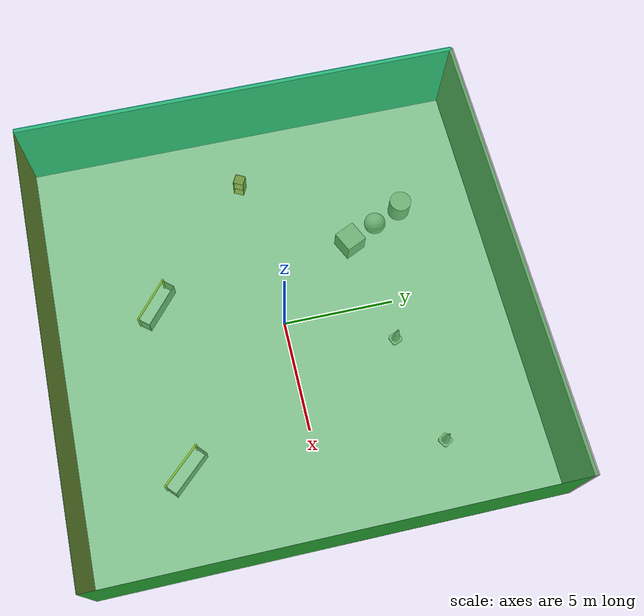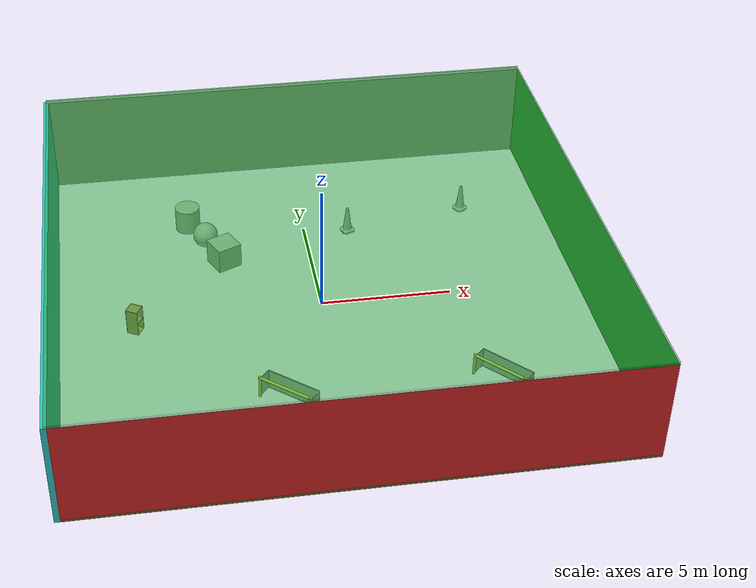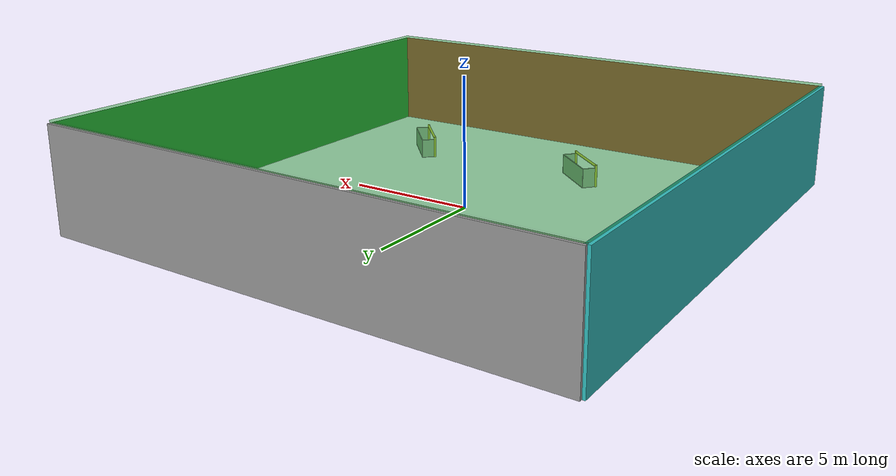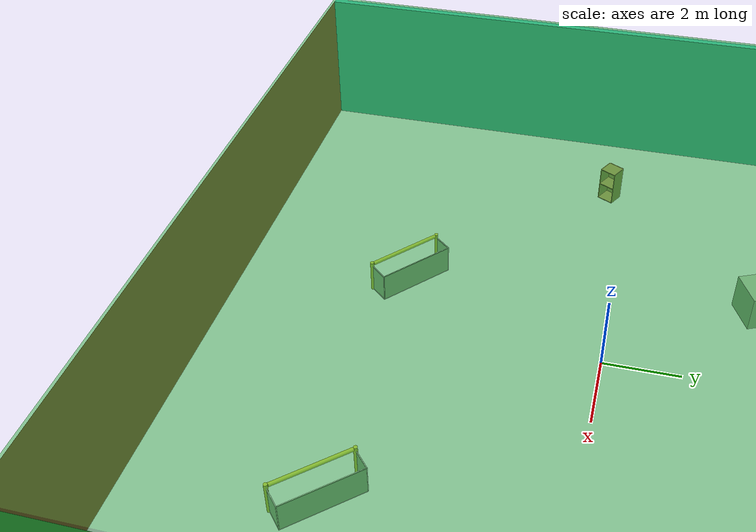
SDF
<sdf version="1.4">
 <world name="default">
  <physics type="ode">
   <max_step_size>0.001</max_step_size>
   <real_time_factor>1</real_time_factor>
   <real_time_update_rate>1000</real_time_update_rate>
   <gravity>0 0 -9.8</gravity>
  </physics>
  <scene><ambient>0.4 0.4 0.4 1</ambient><background>0.7 0.7 0.7 1</background><shadows>1</shadows></scene>
  <model name="Surrounding">
   <static>1</static>
   <link name="Ceiling">
    <collision name="Ceiling_Collision"><geometry><box><size>20 20 0.1</size></box></geometry></collision>
    <visual name="Ceiling_Visual">
     <geometry><box><size>20 20 0.1</size></box></geometry>
     <material>
      <script><uri>file://media/materials/scripts/gazebo.material</uri><name>Gazebo/GreenTransparent</name></script>
     </material>
    </visual>
    <pose>0 0 4.05 0 0 0</pose>
   </link>
   <link name="Wall_South">
    <collision name="Wall_South_Collision">
     <geometry><box><size>20 0 4</size></box></geometry>
     <pose>0 0 2 0 -0 0</pose>
    </collision>
    <visual name="Wall_South_Visual">
     <pose>0 0 2 0 -0 0</pose>
     <geometry><box><size>20 0 4</size></box></geometry>
     <material>
      <script><uri>file://media/materials/scripts/gazebo.material</uri><name>Gazebo/RedGlow</name></script>
     </material>
    </visual>
    <velocity_decay><linear>0</linear><angular>0</angular></velocity_decay>
    <pose>0 -10 0 0 -0 0</pose>
   </link>
   <link name="Wall_East">
    <collision name="Wall_21_Collision">
     <geometry><box><size>20 0 4</size></box></geometry>
     <pose>0 0 2 0 -0 0</pose>
    </collision>
    <visual name="Wall_21_Visual">
     <pose>0 0 2 0 -0 0</pose>
     <geometry><box><size>20 0 4</size></box></geometry>
     <material>
      <script><uri>file://media/materials/scripts/gazebo.material</uri><name>Gazebo/GreenGlow</name></script>
     </material>
    </visual>
    <velocity_decay><linear>0</linear><angular>0</angular></velocity_decay>
    <pose>10 0 0 0 -0 1.5708</pose>
   </link>
   <link name="Wall_North">
    <collision name="Wall_22_Collision">
     <geometry><box><size>20 0.2 4</size></box></geometry>
     <pose>0 0 2 0 -0 0</pose>
    </collision>
    <visual name="Wall_22_Visual">
     <pose>0 0 2 0 -0 0</pose>
     <geometry><box><size>20 0.2 4</size></box></geometry>
     <material>
      <script><uri>file://media/materials/scripts/gazebo.material</uri><name>Gazebo/GreyGradientSky</name></script>
     </material>
    </visual>
    <velocity_decay><linear>0</linear><angular>0</angular></velocity_decay>
    <pose>0 10 0 0 -0 0</pose>
   </link>
   <link name="Wall_West">
    <collision name="Wall_23_Collision">
     <geometry><box><size>20 0.2 4</size></box></geometry>
     <pose>0 0 2 0 -0 0</pose>
    </collision>
    <visual name="Wall_23_Visual">
     <pose>0 0 2 0 -0 0</pose>
     <geometry><box><size>20 0.2 4</size></box></geometry>
     <material>
      <script>
       <uri>file://media/materials/scripts/gazebo.material</uri>
       <name>Gazebo/TurquoiseGlowOutline</name>
      </script>
     </material>
    </visual>
    <velocity_decay><linear>0</linear><angular>0</angular></velocity_decay>
    <pose>-10 0 0 0 0 -1.5708</pose>
   </link>
   <link name="Ground_link">
    <collision name="collision">
     <pose>0 0 .05 0 -0 0</pose>
     <geometry><box><size>20 20 0.1</size></box></geometry>
    </collision>
    <visual name="visual">
     <pose>0 0 .05 0 -0 0</pose>
     <geometry><box><size>20 20 0.1</size></box></geometry>
     <material>
      <script><uri>file://media/materials/scripts/gazebo.material</uri><name>Gazebo/GreenTransparent</name></script>
     </material>
    </visual>
   </link>
   <static>1</static>
  </model>
  <spherical_coordinates>
   <surface_model>EARTH_WGS84</surface_model>
   <latitude_deg>0</latitude_deg>
   <longitude_deg>0</longitude_deg>
   <elevation>0</elevation>
   <heading_deg>0</heading_deg>
  </spherical_coordinates>
  <light name="lightball_0" type="diffuse">
   <diffuse>0.8 0.8 0.8 1</diffuse>
   <specular>0.2 0.2 0.2 1</specular>
   <attenuation>
    <range>100</range>
    <constant>0.7</constant>
    <linear>0.01</linear>
    <quadratic>0.001</quadratic>
   </attenuation>
   <direction>-0.5 0.1 -0.9</direction>
   <pose>-3.63653680742 2.22643858573 1.18113142299 0 0 0</pose>
  </light>
  <light name="lightball_1" type="diffuse">
   <diffuse>0.8 0.8 0.8 1</diffuse>
   <specular>0.2 0.2 0.2 1</specular>
   <attenuation>
    <range>100</range>
    <constant>0.7</constant>
    <linear>0.01</linear>
    <quadratic>0.001</quadratic>
   </attenuation>
   <direction>-0.5 0.1 -0.9</direction>
   <pose>-2.37052394906 3.87313781658 3.67044969966 0 0 0</pose>
  </light>
  <light name="lightball_2" type="diffuse">
   <diffuse>0.8 0.8 0.8 1</diffuse>
   <specular>0.2 0.2 0.2 1</specular>
   <attenuation>
    <range>100</range>
    <constant>0.7</constant>
    <linear>0.01</linear>
    <quadratic>0.001</quadratic>
   </attenuation>
   <direction>-0.5 0.1 -0.9</direction>
   <pose>9.39771687253 4.43210715365 3.4703434039 0 0 0</pose>
  </light>
  <light name="lightball_3" type="diffuse">
   <diffuse>0.8 0.8 0.8 1</diffuse>
   <specular>0.2 0.2 0.2 1</specular>
   <attenuation>
    <range>100</range>
    <constant>0.7</constant>
    <linear>0.01</linear>
    <quadratic>0.001</quadratic>
   </attenuation>
   <direction>-0.5 0.1 -0.9</direction>
   <pose>1.30540679405 3.63000655012 1.23304062579 0 0 0</pose>
  </light>
  <light name="lightball_4" type="diffuse">
   <diffuse>0.8 0.8 0.8 1</diffuse>
   <specular>0.2 0.2 0.2 1</specular>
   <attenuation>
    <range>100</range>
    <constant>0.7</constant>
    <linear>0.01</linear>
    <quadratic>0.001</quadratic>
   </attenuation>
   <direction>-0.5 0.1 -0.9</direction>
   <pose>7.35426714148 0.913926598887 3.80621433409 0 0 0</pose>
  </light>
  <light name="lightball_5" type="diffuse">
   <diffuse>0.8 0.8 0.8 1</diffuse>
   <specular>0.2 0.2 0.2 1</specular>
   <attenuation>
    <range>100</range>
    <constant>0.7</constant>
    <linear>0.01</linear>
    <quadratic>0.001</quadratic>
   </attenuation>
   <direction>-0.5 0.1 -0.9</direction>
   <pose>-1.63697716022 -4.38484858565 1.31725181199 0 0 0</pose>
  </light>
  <include><uri>model://cabinet</uri><pose>-7.09061218707 -0.590075765692 0 0 0 2.65347221748</pose></include>
  <include>
   <uri>model://textured_shapes</uri>
   <pose>-4.00042974713 5.23043547076 0 0 0 0.431886674903</pose>
  </include>
  <include>
   <uri>model://robocup_3Dsim_goal</uri>
   <pose>-2.14009441028 -5.64001673003 0 0 0 0.861936646426</pose>
  </include>
  <include>
   <uri>model://construction_cone</uri>
   <pose>1.76261300231 4.68709135878 0 0 0 1.94716236017</pose>
  </include>
  <include>
   <uri>model://robocup_3Dsim_goal</uri>
   <pose>5.47457310426 -5.65643780449 0 0 0 0.744716480828</pose>
  </include>
  <include>
   <uri>model://construction_cone</uri>
   <pose>6.68918766023 5.58823784816 0 0 0 0.550311834141</pose>
  </include>
 </world>
</sdf>

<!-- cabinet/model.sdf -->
<sdf version="1.5">
  <model name="cabinet">
    <static>true</static>
    <link name="cabinet_bottom_plate">
      <inertial>
        <pose>0 0 -1 0 0 0</pose>
        <inertia>
          <ixx>2.050000</ixx>
          <ixy>0</ixy>
          <ixz>0</ixz>
          <iyy>2.050000</iyy>
          <iyz>0</iyz>
          <izz>2.050000</izz>
        </inertia>
        <mass>25.000000</mass>
      </inertial>
      <collision name="cabinet_bottom_plate_geom">
        <pose>0 0 0.010000 0 0 0</pose>
        <geometry>
          <box>
            <size>0.450000 0.450000 0.020000</size>
          </box>
        </geometry>
      </collision>
      <visual name="cabinet_bottom_plate_geom_visual">
        <pose>0 0 0.010000 0 0 0</pose>
        <geometry>
          <box>
            <size>0.450000 0.450000 0.020000</size>
          </box>
        </geometry>
        <material>
          <script>
            <uri>model://media/materials/scripts/gazebo.material</uri>
            <name>Gazebo/Wood</name>
          </script>
        </material>
      </visual>
      <collision name="cabinet_bottom_plate_geom_cabinet_back_plate">
        <pose>0.235000 0 0.510000 0 0 0</pose>
        <geometry>
          <box>
            <size>0.020000 0.450000 1.020000</size>
          </box>
        </geometry>
      </collision>
      <visual name="cabinet_bottom_plate_geom_cabinet_back_plate_visual">
        <pose>0.235000 0 0.510000 0 0 0</pose>
        <geometry>
          <box>
            <size>0.020000 0.450000 1.020000</size>
          </box>
        </geometry>
        <material>
          <script>
            <uri>model://media/materials/scripts/gazebo.material</uri>
            <name>Gazebo/Wood</name>
          </script>
        </material>
      </visual>
      <collision name="cabinet_bottom_plate_geom_cabinet_left_plate">
        <pose>0 0.235000 0.510000 0 0 0</pose>
        <geometry>
          <box>
            <size>0.450000 0.020000 1.020000</size>
          </box>
        </geometry>
      </collision>
      <visual name="cabinet_bottom_plate_geom_cabinet_left_plate_visual">
        <pose>0 0.235000 0.510000 0 0 0</pose>
        <geometry>
          <box>
            <size>0.450000 0.020000 1.020000</size>
          </box>
        </geometry>
        <material>
          <script>
            <uri>model://media/materials/scripts/gazebo.material</uri>
            <name>Gazebo/Wood</name>
          </script>
        </material>
      </visual>
      <collision name="cabinet_bottom_plate_geom_cabinet_middle_plate">
        <pose>0 0 0.510000 0 0 0</pose>
        <geometry>
          <box>
            <size>0.450000 0.450000 0.020000</size>
          </box>
        </geometry>
      </collision>
      <visual name="cabinet_bottom_plate_geom_cabinet_middle_plate_visual">
        <pose>0 0 0.510000 0 0 0</pose>
        <geometry>
          <box>
            <size>0.450000 0.450000 0.020000</size>
          </box>
        </geometry>
        <material>
          <script>
            <uri>model://media/materials/scripts/gazebo.material</uri>
            <name>Gazebo/Wood</name>
          </script>
        </material>
      </visual>
      <collision name="cabinet_bottom_plate_geom_cabinet_right_plate">
        <pose>0 -0.235000 0.510000 0 0 0</pose>
        <geometry>
          <box>
            <size>0.450000 0.020000 1.020000</size>
          </box>
        </geometry>
      </collision>
      <visual name="cabinet_bottom_plate_geom_cabinet_right_plate_visual">
        <pose>0 -0.235000 0.510000 0 0 0</pose>
        <geometry>
          <box>
            <size>0.450000 0.020000 1.020000</size>
          </box>
        </geometry>
        <material>
          <script>
            <uri>model://media/materials/scripts/gazebo.material</uri>
            <name>Gazebo/Wood</name>
          </script>
        </material>
      </visual>
      <collision name="cabinet_bottom_plate_geom_cabinet_top_plate">
        <pose>0 0 1.010000 0 0 0</pose>
        <geometry>
          <box>
            <size>0.450000 0.450000 0.020000</size>
          </box>
        </geometry>
      </collision>
      <visual name="cabinet_bottom_plate_geom_cabinet_top_plate_visual">
        <pose>0 0 1.010000 0 0 0</pose>
        <geometry>
          <box>
            <size>0.450000 0.450000 0.020000</size>
          </box>
        </geometry>
        <material>
          <script>
            <uri>model://media/materials/scripts/gazebo.material</uri>
            <name>Gazebo/Wood</name>
          </script>
        </material>
      </visual>
    </link>
  </model>
</sdf>

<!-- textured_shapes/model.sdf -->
<sdf version="1.6">
  <model name="textured_shapes">
    <pose>0 0 0.5 0 0 0</pose>
    <link name="box">
      <pose>0 -1.5 0 0 0 0</pose>
      <collision name="collision">
        <geometry>
          <box>
            <size>1 1 1</size>
          </box>
        </geometry>
      </collision>
      <visual name="visual">
        <geometry>
          <box>
            <size>1 1 1</size>
          </box>
        </geometry>
        <material>
          <script>
            <uri>model://../model_source/models/textured_shapes/materials/scripts</uri>
            <uri>model://../model_source/models/textured_shapes/materials/textures</uri>
            <name>TexturedShape/Squares</name>
          </script>
        </material>
      </visual>
    </link>
    <link name="sphere">
      <collision name="collision">
        <geometry>
          <sphere>
            <radius>0.5</radius>
          </sphere>
        </geometry>
      </collision>
      <visual name="visual">
        <geometry>
          <sphere>
            <radius>0.5</radius>
          </sphere>
        </geometry>
        <material>
          <script>
            <uri>model://../model_source/models/textured_shapes/materials/scripts</uri>
            <uri>model://../model_source/models/textured_shapes/materials/textures</uri>
            <name>TexturedShape/Squares</name>
          </script>
        </material>
      </visual>
    </link>
    <link name="cylinder">
      <pose>0 1.5 0 0 0 0</pose>
      <collision name="collision">
        <geometry>
          <cylinder>
            <radius>0.5</radius>
            <length>1</length>
          </cylinder>
        </geometry>
      </collision>
      <visual name="visual">
        <geometry>
          <cylinder>
            <radius>0.5</radius>
            <length>1</length>
          </cylinder>
        </geometry>
        <material>
          <script>
            <uri>model://../model_source/models/textured_shapes/materials/scripts</uri>
            <uri>model://../model_source/models/textured_shapes/materials/textures</uri>
            <name>TexturedShape/Squares</name>
          </script>
        </material>
      </visual>
    </link>
  </model>
</sdf>

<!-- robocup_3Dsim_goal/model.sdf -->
<sdf version="1.5">
  <model name="robocup_3d_goal">
    <static>true</static>
    <link name="left_post">
      <pose>0 1.05 0.45 0 0 0</pose>
      <collision name="collision">
        <geometry>
          <cylinder>
            <radius>0.05</radius>
            <length>0.9</length>
          </cylinder>
        </geometry>
      </collision>
      <visual name="visual">
        <geometry>
          <cylinder>
            <radius>0.05</radius>
            <length>0.9</length>
          </cylinder>
        </geometry>
        <material>
          <script>
            <uri>file://media/materials/scripts/gazebo.material</uri>
            <name>Gazebo/ZincYellow</name>
          </script>
        </material>
      </visual>
    </link>
    <link name="left_support_horiz_lower">
      <pose>0.30 1.05 0.01 0 0 0</pose>
      <collision name="collision">
        <geometry>
          <box>
            <size>0.50 0.02 0.02</size>
          </box>
        </geometry>
      </collision>
      <visual name="visual">
        <geometry>
          <box>
            <size>0.50 0.02 0.02</size>
          </box>
        </geometry>
        <material>
          <script>
            <uri>file://media/materials/scripts/gazebo.material</uri>
            <name>Gazebo/White</name>
          </script>
        </material>
      </visual>
    </link>
    <link name="left_support_horiz_upper">
      <pose>0.30 1.05 0.79 0 0 0</pose>
      <collision name="collision">
        <geometry>
          <box>
            <size>0.50 0.02 0.02</size>
          </box>
        </geometry>
      </collision>
      <visual name="visual">
        <geometry>
          <box>
            <size>0.50 0.02 0.02</size>
          </box>
        </geometry>
        <material>
          <script>
            <uri>file://media/materials/scripts/gazebo.material</uri>
            <name>Gazebo/White</name>
          </script>
        </material>
      </visual>
    </link>
    <link name="left_support_vertical">
      <pose>0.56 1.05 0.4 0 1.5708 0</pose>
      <collision name="collision">
        <geometry>
          <box>
            <size>0.80 0.02 0.02</size>
          </box>
        </geometry>
      </collision>
      <visual name="visual">
        <geometry>
          <box>
            <size>0.80 0.02 0.02</size>
          </box>
        </geometry>
        <material>
          <script>
            <uri>file://media/materials/scripts/gazebo.material</uri>
            <name>Gazebo/White</name>
          </script>
        </material>
      </visual>
    </link>
    <link name="right_support_horiz_lower">
      <pose>0.30 -1.05 0.01 0 0 0</pose>
      <collision name="collision">
        <geometry>
          <box>
            <size>0.50 0.02 0.02</size>
          </box>
        </geometry>
      </collision>
      <visual name="visual">
        <geometry>
          <box>
            <size>0.50 0.02 0.02</size>
          </box>
        </geometry>
        <material>
          <script>
            <uri>file://media/materials/scripts/gazebo.material</uri>
            <name>Gazebo/White</name>
          </script>
        </material>
      </visual>
    </link>
    <link name="right_support_horiz_upper">
      <pose>0.30 -1.05 0.79 0 0 0</pose>
      <collision name="collision">
        <geometry>
          <box>
            <size>0.50 0.02 0.02</size>
          </box>
        </geometry>
      </collision>
      <visual name="visual">
        <geometry>
          <box>
            <size>0.50 0.02 0.02</size>
          </box>
        </geometry>
        <material>
          <script>
            <uri>file://media/materials/scripts/gazebo.material</uri>
            <name>Gazebo/White</name>
          </script>
        </material>
      </visual>
    </link>
    <link name="right_support_vertical">
      <pose>0.56 -1.05 0.4 0 1.5708 0</pose>
      <collision name="collision">
        <geometry>
          <box>
            <size>0.80 0.02 0.02</size>
          </box>
        </geometry>
      </collision>
      <visual name="visual">
        <geometry>
          <box>
            <size>0.80 0.02 0.02</size>
          </box>
        </geometry>
        <material>
          <script>
            <uri>file://media/materials/scripts/gazebo.material</uri>
            <name>Gazebo/White</name>
          </script>
        </material>
      </visual>
    </link>
    <link name="center_support_horiz_lower">
      <pose>0.56 0 0.01 0 1.5708 0</pose>
      <collision name="collision">
        <geometry>
          <box>
            <size>0.02 2.08 0.02</size>
          </box>
        </geometry>
      </collision>
      <visual name="visual">
        <geometry>
          <box>
            <size>0.02 2.08 0.02</size>
          </box>
        </geometry>
        <material>
          <script>
            <uri>file://media/materials/scripts/gazebo.material</uri>
            <name>Gazebo/White</name>
          </script>
        </material>
      </visual>
    </link>
    <link name="center_support_horiz_upper">
      <pose>0.56 0 0.79 0 1.5708 0</pose>
      <collision name="collision">
        <geometry>
          <box>
            <size>0.02 2.08 0.02</size>
          </box>
        </geometry>
      </collision>
      <visual name="visual">
        <geometry>
          <box>
            <size>0.02 2.08 0.02</size>
          </box>
        </geometry>
        <material>
          <script>
            <uri>file://media/materials/scripts/gazebo.material</uri>
            <name>Gazebo/White</name>
          </script>
        </material>
      </visual>
    </link>
    <link name="right_post">
      <pose>0 -1.05 0.45 0 0 0</pose>
      <collision name="collision">
        <geometry>
          <cylinder>
            <radius>0.05</radius>
            <length>0.9</length>
          </cylinder>
        </geometry>
      </collision>
      <visual name="visual">
        <geometry>
          <cylinder>
            <radius>0.05</radius>
            <length>0.9</length>
          </cylinder>
        </geometry>
        <material>
          <script>
            <uri>file://media/materials/scripts/gazebo.material</uri>
            <name>Gazebo/ZincYellow</name>
          </script>
        </material>
      </visual>
    </link>
    <link name="crossbar">
      <pose>0 0 0.85 1.57 1.57 0</pose>
      <collision name="collision">
        <geometry>
          <cylinder>
            <radius>0.05</radius>
            <length>2.0</length>
          </cylinder>
        </geometry>
      </collision>
      <visual name="visual">
        <geometry>
          <cylinder>
            <radius>0.05</radius>
            <length>2.0</length>
          </cylinder>
        </geometry>
        <material>
          <script>
            <uri>file://media/materials/scripts/gazebo.material</uri>
            <name>Gazebo/ZincYellow</name>
          </script>
        </material>
      </visual>
    </link>
    <link name="center_net">
      <pose>0.56 0 0.40 0 0 0</pose>
      <collision name="collision">
        <geometry>
          <box>
            <size>0.01 2.1 0.80</size>
          </box>
        </geometry>
      </collision>
      <visual name="visual">
        <geometry>
          <box>
            <size>0.01 2.1 0.80</size>
          </box>
        </geometry>
        <material>
          <script>
            <uri>model://../model_source/models/robocup09_spl_field/materials/scripts/</uri>
            <uri>model://../model_source/models/robocup09_spl_field/materials/textures/</uri>
            <name>RoboCup/Net</name>
          </script>
        </material>
      </visual>
    </link>
    <link name="left_net">
      <pose>0.30 1.05 0.40 0 0 0</pose>
      <collision name="collision">
        <geometry>
          <box>
            <size>0.50 0.01 0.76</size>
          </box>
        </geometry>
      </collision>
      <visual name="visual">
        <geometry>
          <box>
            <size>0.50 0.01 0.76</size>
          </box>
        </geometry>
        <material>
          <script>
            <uri>model://../model_source/models/robocup09_spl_field/materials/scripts/</uri>
            <uri>model://../model_source/models/robocup09_spl_field/materials/textures/</uri>
            <name>RoboCup/Net</name>
          </script>
        </material>
      </visual>
    </link>
    <link name="right_net">
      <pose>0.30 -1.05 0.40 0 0 0</pose>
      <collision name="collision">
        <geometry>
          <box>
            <size>0.50 0.01 0.76</size>
          </box>
        </geometry>
      </collision>
      <visual name="visual">
        <geometry>
          <box>
            <size>0.50 0.01 0.76</size>
          </box>
        </geometry>
        <material>
          <script>
            <uri>model://../model_source/models/robocup09_spl_field/materials/scripts/</uri>
            <uri>model://../model_source/models/robocup09_spl_field/materials/textures/</uri>
            <name>RoboCup/Net</name>
          </script>
        </material>
      </visual>
    </link>
  </model>
</sdf>

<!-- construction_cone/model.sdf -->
<sdf version="1.5">
  <model name="Construction Cone">
    <link name="link">
      <collision name="collision">
        <geometry>
          <mesh>
            <scale>10 10 10</scale>
            <uri>file://isr-testbed/construction_cone/meshes/construction_cone.dae</uri>
          </mesh>
        </geometry>
      </collision>
      <visual name="visual">
        <geometry>
          <mesh>
            <scale>10 10 10</scale>
            <uri>file://isr-testbed/construction_cone/meshes/construction_cone.dae</uri>
          </mesh>
        </geometry>
      </visual>
    </link>
  </model>
</sdf>
